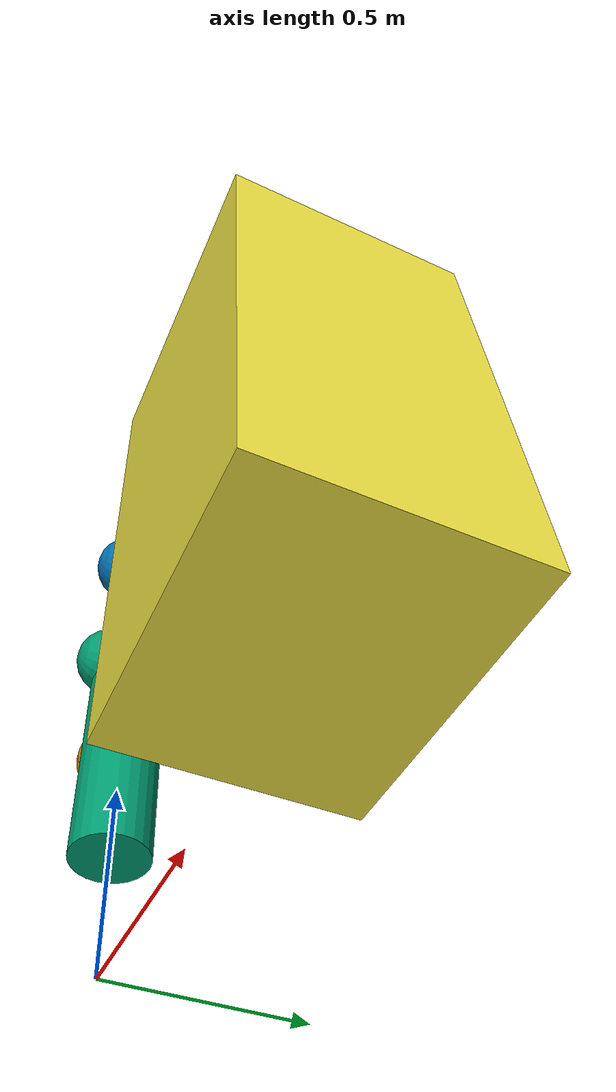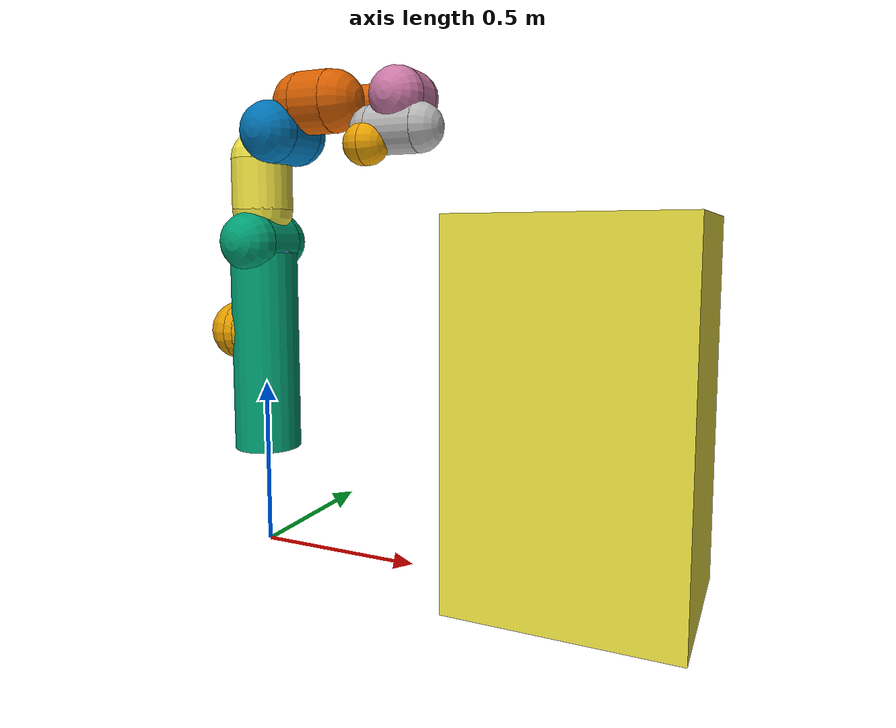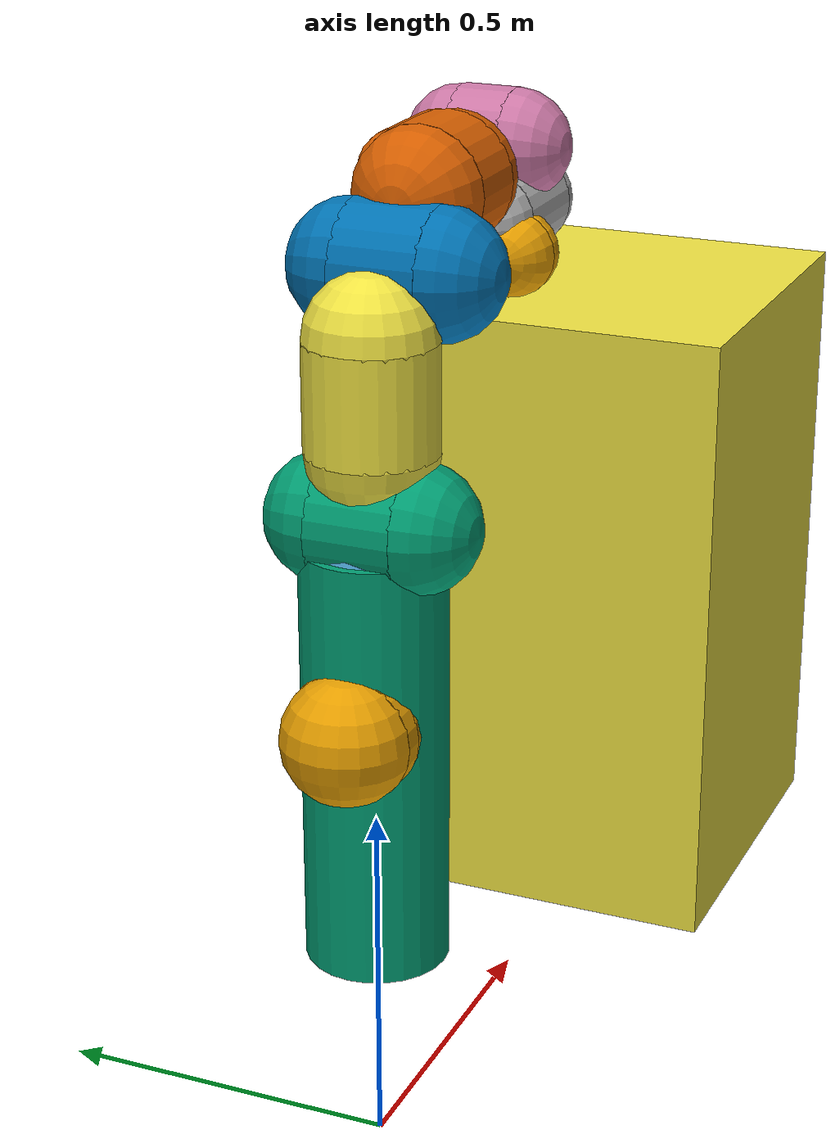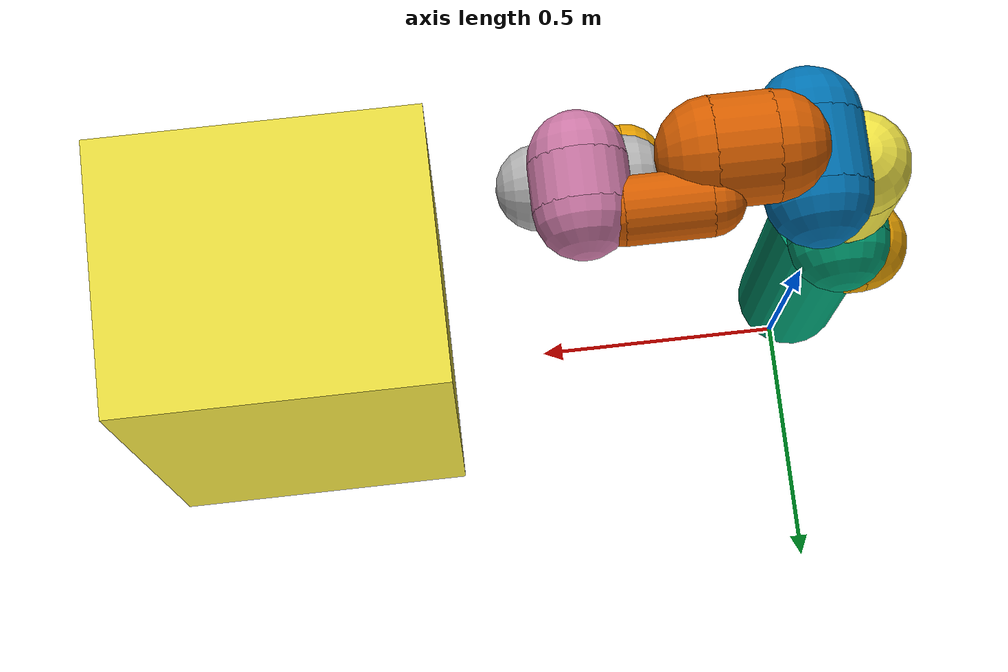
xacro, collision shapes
<?xml version='1.0' encoding='utf-8'?>
<robot xmlns:xacro="http://www.ros.org/wiki/xacro" name="panda">
  <xacro:include filename="$(find franka_description)/robots/panda_arm.xacro" />
  <xacro:panda_arm safety_distance="0.03"/>
  <link name="workspace_link">
  </link>

  <joint name="workspace_pedestal_joint" type="fixed">
    <parent link="workspace_link"/>
    <child link="pedestal_link"/>
    <origin rpy="0 0 0" xyz="0 0 0.3"/>
  </joint>

  <link name="pedestal_link">
    <visual>
      <geometry>
          <cylinder length="0.6" radius="0.1"/>
        </geometry>
    </visual>
    <collision>
        <geometry>
          <cylinder length="0.6" radius="0.1"/>
        </geometry>
        <origin rpy="0 0 0" xyz="0 0 0.3"/>
    </collision>
  </link>

  <joint name="pedestal_robot_joint" type="fixed">
    <parent link="pedestal_link"/>
    <child link="panda_link0"/>
    <origin rpy="0 0 0" xyz="0 0 0.3"/>
  </joint>

  <joint name="workspace_table_joint" type="fixed">
    <parent link="workspace_link"/>
    <child link="table_link"/>
  </joint>

  <link name="table_link">
    <visual>
      <geometry>
          <box size="0.6 0.5 1"/>
      </geometry>
      <origin rpy="0 0 0" xyz="1 0 0.5"/>
    </visual>
    <collision>
        <geometry>
          <box size="0.6 0.5 1"/>
        </geometry>
        <origin rpy="0 0 0" xyz="1 0 0.5"/>
    </collision>
  </link>
</robot>

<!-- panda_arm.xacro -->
<robot xmlns:xacro="http://www.ros.org/wiki/xacro" name="panda">
  <!-- safety_distance: Minimum safety distance in [m] by which the collision volumes are expanded and which is enforced during robot motions -->
  <!-- arm_id: Namespace of the panda arm. Serves to differentiate between arms in case of multiple instances. -->
  <xacro:macro name="panda_arm" params="arm_id:='panda' description_pkg:='franka_description' connected_to:='' xyz:='0 0 0' rpy:='0 0 0' safety_distance:=0">
    <xacro:unless value="${not connected_to}">
      <joint name="${arm_id}_joint_${connected_to}" type="fixed">
        <parent link="${connected_to}"/>
        <child link="${arm_id}_link0"/>
        <origin rpy="${rpy}" xyz="${xyz}"/>
      </joint>
    </xacro:unless>
    <link name="${arm_id}_link0">
      <visual>
        <geometry>
          <mesh filename="package://${description_pkg}/meshes/visual/link0.dae"/>
        </geometry>
      </visual>
      <collision>
        <origin xyz="-0.075 0 0.06" rpy="0 ${pi/2} 0"/>
        <geometry>
          <cylinder radius="${0.06+safety_distance}" length="0.03" />
        </geometry>
      </collision>
      <collision>
        <origin xyz="-0.06 0 0.06" rpy="0 0 0"/>
        <geometry>
          <sphere radius="${0.06+safety_distance}" />
        </geometry>
      </collision>
      <collision>
        <origin xyz="-0.09 0 0.06" rpy="0 0 0"/>
        <geometry>
          <sphere radius="${0.06+safety_distance}" />
        </geometry>
      </collision>
    </link>
    <link name="${arm_id}_link1">
      <visual>
        <geometry>
          <mesh filename="package://${description_pkg}/meshes/visual/link1.dae"/>
        </geometry>
      </visual>
      <collision>
        <origin xyz="0 0 -0.1915" rpy="0 0 0"/>
        <geometry>
          <cylinder radius="${0.06+safety_distance}" length="0.2830" />
        </geometry>
      </collision>
      <collision>
        <origin xyz="0 0 -0.333" rpy="0 0 0"/>
        <geometry>
          <sphere radius="${0.06+safety_distance}" />
        </geometry>
      </collision>
      <collision>
        <origin xyz="0 0 -0.05" rpy="0 0 0"/>
        <geometry>
          <sphere radius="${0.06+safety_distance}" />
        </geometry>
      </collision>
    </link>
    <joint name="${arm_id}_joint1" type="revolute">
      <safety_controller k_position="100.0" k_velocity="40.0" soft_lower_limit="-2.8973" soft_upper_limit="2.8973"/>
      <origin rpy="0 0 0" xyz="0 0 0.333"/>
      <parent link="${arm_id}_link0"/>
      <child link="${arm_id}_link1"/>
      <axis xyz="0 0 1"/>
      <limit effort="87" lower="-2.8973" upper="2.8973" velocity="2.1750"/>
    </joint>
    <link name="${arm_id}_link2">
      <visual>
        <geometry>
          <mesh filename="package://${description_pkg}/meshes/visual/link2.dae"/>
        </geometry>
      </visual>
      <collision>
        <origin xyz="0 0 0" rpy="0 0 0"/>
        <geometry>
          <cylinder radius="${0.06+safety_distance}" length="0.12" />
        </geometry>
      </collision>
      <collision>
        <origin xyz="0 0 -0.06" rpy="0 0 0"/>
        <geometry>
          <sphere radius="${0.06+safety_distance}" />
        </geometry>
      </collision>
      <collision>
        <origin xyz="0 0 0.06" rpy="0 0 0"/>
        <geometry>
          <sphere radius="${0.06+safety_distance}" />
        </geometry>
      </collision>
    </link>
    <joint name="${arm_id}_joint2" type="revolute">
      <safety_controller k_position="100.0" k_velocity="40.0" soft_lower_limit="-1.7628" soft_upper_limit="1.7628"/>
      <origin rpy="${-pi/2} 0 0" xyz="0 0 0"/>
      <parent link="${arm_id}_link1"/>
      <child link="${arm_id}_link2"/>
      <axis xyz="0 0 1"/>
      <limit effort="87" lower="-1.7628" upper="1.7628" velocity="2.1750"/>
    </joint>
    <link name="${arm_id}_link3">
      <visual>
        <geometry>
          <mesh filename="package://${description_pkg}/meshes/visual/link3.dae"/>
        </geometry>
      </visual>
      <collision>
        <origin xyz="0 0 -0.145" rpy="0 0 0"/>
        <geometry>
          <cylinder radius="${0.06+safety_distance}" length="0.15" />
        </geometry>
      </collision>
      <collision>
        <origin xyz="0 0 -0.22" rpy="0 0 0"/>
        <geometry>
          <sphere radius="${0.06+safety_distance}" />
        </geometry>
      </collision>
      <collision>
        <origin xyz="0 0 -0.07" rpy="0 0 0"/>
        <geometry>
          <sphere radius="${0.06+safety_distance}" />
        </geometry>
      </collision>
    </link>
    <joint name="${arm_id}_joint3" type="revolute">
      <safety_controller k_position="100.0" k_velocity="40.0" soft_lower_limit="-2.8973" soft_upper_limit="2.8973"/>
      <origin rpy="${pi/2} 0 0" xyz="0 -0.316 0"/>
      <parent link="${arm_id}_link2"/>
      <child link="${arm_id}_link3"/>
      <axis xyz="0 0 1"/>
      <limit effort="87" lower="-2.8973" upper="2.8973" velocity="2.1750"/>
    </joint>
    <link name="${arm_id}_link4">
      <visual>
        <geometry>
          <mesh filename="package://${description_pkg}/meshes/visual/link4.dae"/>
        </geometry>
      </visual>
      <collision>
        <origin xyz="0 0 0" rpy="0 0 0"/>
        <geometry>
          <cylinder radius="${0.06+safety_distance}" length="0.12" />
        </geometry>
      </collision>
      <collision>
        <origin xyz="0 0 0.06" rpy="0 0 0"/>
        <geometry>
          <sphere radius="${0.06+safety_distance}" />
        </geometry>
      </collision>
      <collision>
        <origin xyz="0 0 -0.06" rpy="0 0 0"/>
        <geometry>
          <sphere radius="${0.06+safety_distance}" />
        </geometry>
      </collision>
    </link>
    <joint name="${arm_id}_joint4" type="revolute">
      <safety_controller k_position="100.0" k_velocity="40.0" soft_lower_limit="-3.0718" soft_upper_limit="-0.0698"/>
      <origin rpy="${pi/2} 0 0" xyz="0.0825 0 0"/>
      <parent link="${arm_id}_link3"/>
      <child link="${arm_id}_link4"/>
      <axis xyz="0 0 1"/>
      <limit effort="87" lower="-3.0718" upper="-0.0698" velocity="2.1750"/>
    </joint>
    <link name="${arm_id}_link5">
      <visual>
        <geometry>
          <mesh filename="package://${description_pkg}/meshes/visual/link5.dae"/>
        </geometry>
      </visual>
      <collision>
        <origin xyz="0 0 -0.26" rpy="0 0 0"/>
        <geometry>
          <cylinder radius="${0.06+safety_distance}" length="0.1" />
        </geometry>
      </collision>
      <collision>
        <origin xyz="0 0 -0.31" rpy="0 0 0"/>
        <geometry>
          <sphere radius="${0.06+safety_distance}" />
        </geometry>
      </collision>
      <collision>
        <origin xyz="0 0 -0.21" rpy="0 0 0"/>
        <geometry>
          <sphere radius="${0.06+safety_distance}" />
        </geometry>
      </collision>
      <collision>
        <origin xyz="0 0.08 -0.13" rpy="0 0 0"/>
        <geometry>
          <cylinder radius="${0.025+safety_distance}" length="0.14" />
        </geometry>
      </collision>
      <collision>
        <origin xyz="0 0.08 -0.06" rpy="0 0 0"/>
        <geometry>
          <sphere radius="${0.025+safety_distance}" />
        </geometry>
      </collision>
      <collision>
        <origin xyz="0 0.08 -0.20" rpy="0 0 0"/>
        <geometry>
          <sphere radius="${0.025+safety_distance}" />
        </geometry>
      </collision>

    </link>
    <joint name="${arm_id}_joint5" type="revolute">
      <safety_controller k_position="100.0" k_velocity="40.0" soft_lower_limit="-2.8973" soft_upper_limit="2.8973"/>
      <origin rpy="${-pi/2} 0 0" xyz="-0.0825 0.384 0"/>
      <parent link="${arm_id}_link4"/>
      <child link="${arm_id}_link5"/>
      <axis xyz="0 0 1"/>
      <limit effort="12" lower="-2.8973" upper="2.8973" velocity="2.6100"/>
    </joint>
    <link name="${arm_id}_link6">
      <visual>
        <geometry>
          <mesh filename="package://${description_pkg}/meshes/visual/link6.dae"/>
        </geometry>
      </visual>
      <collision>
        <origin xyz="0 0 -0.03" rpy="0 0 0"/>
        <geometry>
          <cylinder radius="${0.05+safety_distance}" length="0.08" />
        </geometry>
      </collision>
      <collision>
        <origin xyz="0 0 0.01" rpy="0 0 0"/>
        <geometry>
          <sphere radius="${0.05+safety_distance}" />
        </geometry>
      </collision>
      <collision>
        <origin xyz="0 0 -0.07" rpy="0 0 0"/>
        <geometry>
          <sphere radius="${0.05+safety_distance}" />
        </geometry>
      </collision>
    </link>
    <joint name="${arm_id}_joint6" type="revolute">
      <safety_controller k_position="100.0" k_velocity="40.0" soft_lower_limit="-0.0175" soft_upper_limit="3.7525"/>
      <origin rpy="${pi/2} 0 0" xyz="0 0 0"/>
      <parent link="${arm_id}_link5"/>
      <child link="${arm_id}_link6"/>
      <axis xyz="0 0 1"/>
      <limit effort="12" lower="-0.0175" upper="3.7525" velocity="2.6100"/>
    </joint>
    <link name="${arm_id}_link7">
      <visual>
        <geometry>
          <mesh filename="package://${description_pkg}/meshes/visual/link7.dae"/>
        </geometry>
      </visual>
      <collision>
        <origin xyz="0 0 0.01" rpy="0 0 0"/>
        <geometry>
          <cylinder radius="${0.04+safety_distance}" length="0.14" />
        </geometry>
      </collision>
      <collision>
        <origin xyz="0 0 0.08" rpy="0 0 0"/>
        <geometry>
          <sphere radius="${0.04+safety_distance}"  />
        </geometry>
      </collision>
      <collision>
        <origin xyz="0 0 -0.06" rpy="0 0 0"/>
        <geometry>
          <sphere radius="${0.04+safety_distance}"  />
        </geometry>
      </collision>
    </link>
    <joint name="${arm_id}_joint7" type="revolute">
      <safety_controller k_position="100.0" k_velocity="40.0" soft_lower_limit="-2.8973" soft_upper_limit="2.8973"/>
      <origin rpy="${pi/2} 0 0" xyz="0.088 0 0"/>
      <parent link="${arm_id}_link6"/>
      <child link="${arm_id}_link7"/>
      <axis xyz="0 0 1"/>
      <limit effort="12" lower="-2.8973" upper="2.8973" velocity="2.6100"/>
    </joint>
    <link name="${arm_id}_link8">
      <collision>
        <origin xyz="0.0424 0.0424 -0.0250" rpy="${pi} ${pi/2} ${pi/2}"/>
        <geometry>
          <cylinder radius="${0.03+safety_distance}"  length="0.01" />
        </geometry>
      </collision>
      <collision>
        <origin xyz="0.0424 0.0424 -0.02" rpy="0 0 0"/>
        <geometry>
          <sphere radius="${0.03+safety_distance}"  />
        </geometry>
      </collision>
      <collision>
        <origin xyz="0.0424 0.0424 -0.03" rpy="0 0 0"/>
        <geometry>
          <sphere radius="${0.03+safety_distance}"  />
        </geometry>
      </collision>
    </link>
    <joint name="${arm_id}_joint8" type="fixed">
      <origin rpy="0 0 0" xyz="0 0 0.107"/>
      <parent link="${arm_id}_link7"/>
      <child link="${arm_id}_link8"/>
    </joint>
  </xacro:macro>
</robot>
